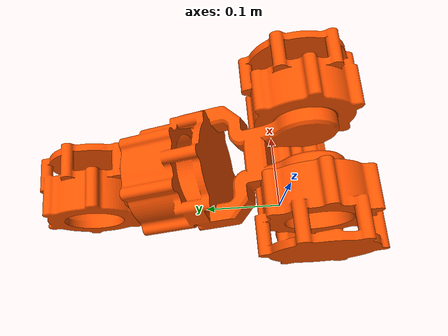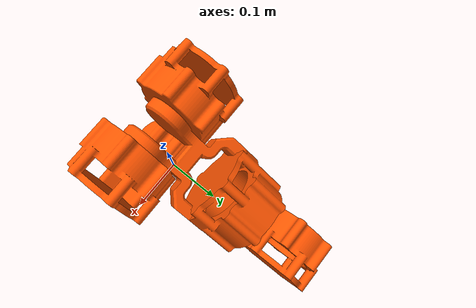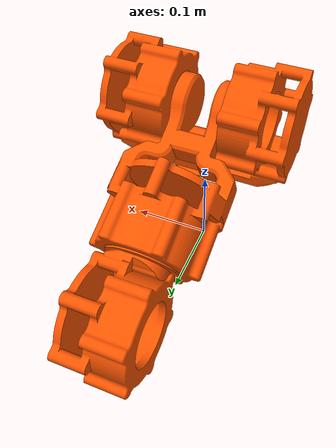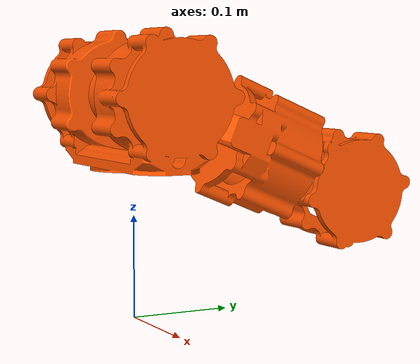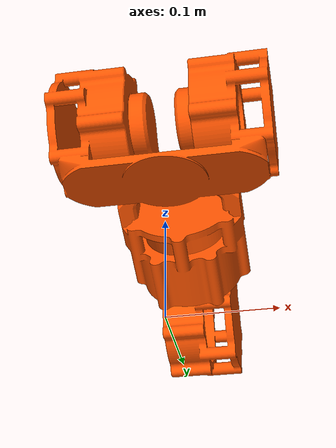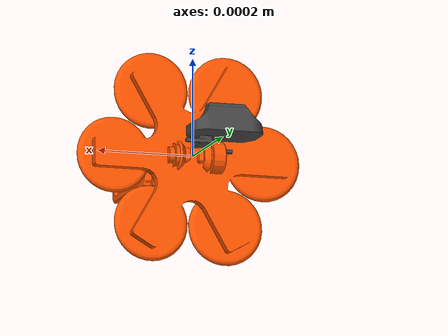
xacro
<?xml version="1.0" ?>
<robot name="darm_ros2" xmlns:xacro="http://www.ros.org/wiki/xacro">

<xacro:include filename="$(find darm_ros2)/urdf/materials.xacro" />
<xacro:include filename="$(find darm_ros2)/urdf/darm.trans" />
<xacro:include filename="$(find darm_ros2)/urdf/gazebo.xacro" />

    <!-- LINKS -->
	<link name="world" />

    <link name="base_link">
        <inertial>
            <origin xyz="-2.288387567127362e-09 0.029744552569164338 -2.7790617352941895e-11" rpy="0.0 0.0 0.0" />
            <mass value="30.98237928008998" />
            <inertia ixx="0.3385363158905134" iyy="0.636909354739284" izz="0.3385363160689544" ixy="2.036397082472488e-09" iyz="2.5408633165300008e-11" ixz="-1.939809256856686e-12" />
        </inertial>
        <visual name="base_link_visual">
            <origin xyz="0.0 0.0 0.0" rpy="0.0 0.0 0.0" />
            <geometry>
                <mesh filename="package://darm_ros2/meshes/base_link.stl" scale="0.001 0.001 0.001" />
            </geometry>
            <material name="orange"/>
        </visual>
        <collision name="base_link_collision">
            <origin xyz="0.0 0.0 0.0" rpy="0.0 0.0 0.0" />
            <geometry>
                <mesh filename="package://darm_ros2/meshes/base_link.stl" scale="0.001 0.001 0.001" />
            </geometry>
        </collision>
    </link>

    <link name="joint_1">
        <inertial>
            <origin xyz="1.0412391355681314e-08 -0.058438410451859345 1.8359150270493027e-08" rpy="0.0 -0.0 0.0" />
            <mass value="7.29719957969873" />
            <inertia ixx="0.01736664062994192" iyy="0.039633627891454026" izz="0.043633339975733765" ixy="3.982327217725157e-09" iyz="-3.838748237483296e-09" ixz="-2.4797155134674376e-09" />
        </inertial>
        <visual name="joint_1_visual">
            <origin xyz="-4.440892098500626e-18 0.14444 -5.813068857654297e-17" rpy="-3.141592653589793 -5.208712097802611e-32 1.5375327027985792e-47" />
            <geometry>
                <mesh filename="package://darm_ros2/meshes/joint_1.stl" scale="0.001 0.001 0.001" />
            </geometry>
            <material name="orange"/>
        </visual>
        <collision name="joint_1_collision">
            <origin xyz="-4.440892098500626e-18 0.14444 -5.813068857654297e-17" rpy="-3.141592653589793 -5.208712097802611e-32 1.5375327027985792e-47" />
            <geometry>
                <mesh filename="package://darm_ros2/meshes/joint_1.stl" scale="0.001 0.001 0.001" />
            </geometry>
        </collision>
    </link>

    <link name="joint_2">
        <inertial>
            <origin xyz="0.101530183690497 1.8692954396343961e-10 0.031000009707170414" rpy="-2.0175996271931116e-126 -0.0 0.0" />
            <mass value="4.705409447021641" />
            <inertia ixx="0.008990488834289139" iyy="0.023924072334989277" izz="0.021967663876200583" ixy="-2.262051336309411e-12" iyz="-3.4212063421550937e-11" ixz="-1.2117789804287076e-10" />
        </inertial>
        <visual name="joint_2_visual">
            <origin xyz="-0.21544000000000002 7.20682744733199e-18 0.030999999999999996" rpy="-1.5707963267948961 -1.5707963267948963 0" />
            <geometry>
                <mesh filename="package://darm_ros2/meshes/joint_2.stl" scale="0.001 0.001 0.001" />
            </geometry>
            <material name="orange"/>
        </visual>
        <collision name="joint_2_collision">
            <origin xyz="-0.21544000000000002 7.20682744733199e-18 0.030999999999999996" rpy="-1.5707963267948961 -1.5707963267948963 0" />
            <geometry>
                <mesh filename="package://darm_ros2/meshes/joint_2.stl" scale="0.001 0.001 0.001" />
            </geometry>
        </collision>
    </link>

    <link name="joint_3">
        <inertial>
            <origin xyz="0.002678897497101074 -0.056368343818636146 2.085648641441812e-09" rpy="0.0 2.5912800646590067e-80 0.0" />
            <mass value="2.2605790149546157" />
            <inertia ixx="0.005582960368891776" iyy="0.003838758447778264" izz="0.004707058146855458" ixy="1.2728021578769632e-05" iyz="-9.431452885407716e-11" ixz="-1.0587058492856476e-10" />
        </inertial>
        <visual name="joint_3_visual">
            <origin xyz="-4.440892098489952e-18 0.40708 1.7965596314673336e-14" rpy="-3.1415926535897487 -5.208712097802611e-32 -2.304339986547433e-45" />
            <geometry>
                <mesh filename="package://darm_ros2/meshes/joint_3.stl" scale="0.001 0.001 0.001" />
            </geometry>
            <material name="orange"/>
        </visual>
        <collision name="joint_3_collision">
            <origin xyz="-4.440892098489952e-18 0.40708 1.7965596314673336e-14" rpy="-3.1415926535897487 -5.208712097802611e-32 -2.304339986547433e-45" />
            <geometry>
                <mesh filename="package://darm_ros2/meshes/joint_3.stl" scale="0.001 0.001 0.001" />
            </geometry>
        </collision>
    </link>

    <link name="forearm">
        <inertial>
            <origin xyz="0.1378122186468962 9.542655754678948e-10 -0.025280304664352254" rpy="2.4088000730165286e-127 -0.0 0.0" />
            <mass value="5.700507286017294" />
            <inertia ixx="0.014690983611441544" iyy="0.05714315758688748" izz="0.04742481748033489" ixy="2.9166207951480496e-11" iyz="4.415442864317638e-10" ixz="0.006835184215065112" />
        </inertial>
        <visual name="forearm_visual">
            <origin xyz="-0.47208 1.0103368337348527e-18 -0.036399999999999995" rpy="1.570796326794897 1.5707963267948961 0" />
            <geometry>
                <mesh filename="package://darm_ros2/meshes/forearm.stl" scale="0.001 0.001 0.001" />
            </geometry>
            <material name="orange"/>
        </visual>
        <collision name="forearm_collision">
            <origin xyz="-0.47208 1.0103368337348527e-18 -0.036399999999999995" rpy="1.570796326794897 1.5707963267948961 0" />
            <geometry>
                <mesh filename="package://darm_ros2/meshes/forearm.stl" scale="0.001 0.001 0.001" />
            </geometry>
        </collision>
    </link>

    <link name="differential">
        <inertial>
            <origin xyz="0.0006425723553488183 9.013664646654307e-14 0.05277588000006361" rpy="-5.800390575776574e-124 -0.0 0.0" />
            <mass value="0.9802336095389897" />
            <inertia ixx="0.0011354294505879889" iyy="0.0011537301057404914" izz="0.0002680624353230687" ixy="2.2392050591685125e-13" iyz="-7.071286713681614e-15" ixz="9.333313530719728e-17" />
        </inertial>
        <visual name="differential_visual">
            <origin xyz="-0.8099010000000003 3.527298460556203e-15 0.05277588" rpy="1.570796326794897 1.5707963267948297 0" />
            <geometry>
                <mesh filename="package://darm_ros2/meshes/differential.stl" scale="0.001 0.001 0.001" />
            </geometry>
            <material name="orange"/>
        </visual>
        <collision name="differential_collision">
            <origin xyz="-0.8099010000000003 3.527298460556203e-15 0.05277588" rpy="1.570796326794897 1.5707963267948297 0" />
            <geometry>
                <mesh filename="package://darm_ros2/meshes/differential.stl" scale="0.001 0.001 0.001" />
            </geometry>
        </collision>
    </link>

    <link name="gripper">
        <inertial>
            <origin xyz="-7.247865885054152e-10 0.04702630625922907 5.78616520084559e-10" rpy="0.0 -3.5826229164382036e-80 0.0" />
            <mass value="1.788490804033633" />
            <inertia ixx="0.0014720116879258782" iyy="0.0014220967307062562" izz="0.00178230536921542" ixy="3.3014607067102986e-11" iyz="-2.532468461996125e-11" ixz="-1.9905818682277557e-12" />
        </inertial>
        <visual name="gripper_visual">
            <origin xyz="-4.440892094647803e-18 -0.831601 -5.401531106258501e-14" rpy="6.536973199318745e-14 5.208712097802611e-32 3.3888229575898595e-45" />
            <geometry>
                <mesh filename="package://darm_ros2/meshes/gripper.stl" scale="0.001 0.001 0.001" />
            </geometry>
            <material name="orange"/>
        </visual>
        <collision name="gripper_collision">
            <origin xyz="-4.440892094647803e-18 -0.831601 -5.401531106258501e-14" rpy="6.536973199318745e-14 5.208712097802611e-32 3.3888229575898595e-45" />
            <geometry>
                <mesh filename="package://darm_ros2/meshes/gripper.stl" scale="0.001 0.001 0.001" />
            </geometry>
        </collision>
    </link>

    <link name="finger_1">
        <inertial>
            <origin xyz="0.022275330159025372 -0.004364373907004334 -0.014714950169034154" rpy="0.0 -0.0 0.0" />
            <mass value="0.26185795930929495" />
            <inertia ixx="3.880934440505236e-05" iyy="9.298201797455129e-05" izz="8.507761782892623e-05" ixy="-6.002284546489584e-06" iyz="-2.8994273520819304e-06" ixz="-1.446096623260382e-06" />
        </inertial>
        <visual name="finger_1_visual">
            <origin xyz="-0.9165647460883233 -0.003503477953506661 -0.02500002288399092" rpy="-1.5707925322419267 -1.570796301827784 0" />
            <geometry>
                <mesh filename="package://darm_ros2/meshes/finger_1.stl" scale="0.001 0.001 0.001" />
            </geometry>
            <material name="rubber"/>
        </visual>
        <collision name="finger_1_collision">
            <origin xyz="-0.9165647460883233 -0.003503477953506661 -0.02500002288399092" rpy="-1.5707925322419267 -1.570796301827784 0" />
            <geometry>
                <mesh filename="package://darm_ros2/meshes/finger_1.stl" scale="0.001 0.001 0.001" />
            </geometry>
        </collision>
    </link>

    <link name="finger_2">
        <inertial>
            <origin xyz="0.02227529630190503 -0.004364542956608771 -0.014714951286228788" rpy="0.0 -0.0 8.470329472543003e-22" />
            <mass value="0.2618579593092649" />
            <inertia ixx="3.880925315979235e-05" iyy="9.298210907506991e-05" izz="8.507761797295812e-05" ixy="-6.001873568420766e-06" iyz="-2.8994160777154916e-06" ixz="-1.4461163168688797e-06" />
        </inertial>
        <visual name="finger_2_visual">
            <origin xyz="-0.9165647738985482 -0.0034965220464385043 -0.024999977120956935" rpy="1.5708001213478664 1.5707963018277513 0" />
            <geometry>
                <mesh filename="package://darm_ros2/meshes/finger_2.stl" scale="0.001 0.001 0.001" />
            </geometry>
            <material name="rubber"/>
        </visual>
        <collision name="finger_2_collision">
            <origin xyz="-0.9165647738985482 -0.0034965220464385043 -0.024999977120956935" rpy="1.5708001213478664 1.5707963018277513 0" />
            <geometry>
                <mesh filename="package://darm_ros2/meshes/finger_2.stl" scale="0.001 0.001 0.001" />
            </geometry>
        </collision>
    </link>

    <link name="dock">
        <inertial>
            <origin xyz="9.123968339512894e-08 0.02244543692492791 -0.21216314201498515" rpy="0.0 0.0 0.0" />
            <mass value="4.14283366579888" />
            <inertia ixx="0.003902882548391967" iyy="0.00782818367286213" izz="0.006179527994280975" ixy="-2.754251235646076e-09" iyz="0.00017015521062901904" ixz="6.810558796533437e-09" />
        </inertial>
        <visual name="dock_visual">
            <origin xyz="0.0 0.0 0.0" rpy="0.0 0.0 0.0" />
            <geometry>
                <mesh filename="package://darm_ros2/meshes/dock.stl" scale="0.001 0.001 0.001" />
            </geometry>
            <material name="rubber"/>
        </visual>
        <collision name="dock_collision">
            <origin xyz="0.0 0.0 0.0" rpy="0.0 0.0 0.0" />
            <geometry>
                <mesh filename="package://darm_ros2/meshes/dock.stl" scale="0.001 0.001 0.001" />
            </geometry>
        </collision>
    </link>

    <!-- JOINTS -->
    <joint name="base_joint" type="fixed">
        <origin xyz="0 0 0" rpy="${90 * pi / 180} 0 0"/>
        <parent link="world"/>
        <child link="base_link"/>
    </joint>

    <joint name="joint_1_joint" type="revolute">
        <origin xyz="4.4408920985006124e-18 0.14443999999999987 -6.013519624750362e-17" rpy="3.141592653589793 -5.208712097802607e-32 1.609818104043878e-47" />
        <parent link="base_link" />
        <child link="joint_1" />
        <axis xyz="-2.3262389236353407e-63 -1.0 4.02455846426619e-16" />
        <limit lower="${-pi}" upper="${pi}" effort="20" velocity="2" />
    </joint>

    <joint name="joint_2_joint" type="revolute">
        <origin xyz="-0.031000000000000003 -0.071 2.857436509628995e-17" rpy="-1.5707963267948963 -4.02455846426619e-16 -1.5707963267948966" />
        <parent link="joint_1" />
        <child link="joint_2" />
        <axis xyz="-3.730750440443123e-48 2.324793976983833e-16 1.0" />
        <limit lower="${-113 * pi / 180}" upper="${113 * pi / 180}" effort="40" velocity="2" />
    </joint>

    <joint name="joint_3_joint" type="revolute">
        <origin xyz="0.19163999999999998 7.206861328649881e-18 0.031000000000000003" rpy="1.5707963267948526 -1.5707963267948963 0" />
        <parent link="joint_2" />
        <child link="joint_3" />
        <axis xyz="-2.3262389236353413e-63 -1.0 -4.413283944382435e-14" />
        <limit lower="${-pi}" upper="${pi}" effort="20" velocity="2" />
    </joint>

    <joint name="forearm_joint" type="revolute">
        <origin xyz="-0.0364 -0.065 -2.8686345638485836e-15" rpy="1.5707963267948966 4.413283944382435e-14 -1.5707963267948966" />
        <parent link="joint_3" />
        <child link="forearm" />
        <axis xyz="3.730750440443123e-48 -2.775557561585062e-17 1.0" />
        <limit lower="${-122.9 * pi / 180}" upper="${122.9 * pi / 180}" effort="20" velocity="2" />
    </joint>

    <joint name="differential_joint" type="revolute">
        <origin xyz="0.337821 2.475127880450021e-18 -0.08917588" rpy="6.686318165803997e-14 -0.0 0.0" />
        <parent link="forearm" />
        <child link="differential" />
        <axis xyz="3.730750440443123e-48 6.683542608242411e-14 1.0" />
        <limit lower="${-110 * pi / 180}" upper="${110 * pi / 180}" effort="8" velocity="2" />
    </joint>

    <joint name="gripper_joint" type="revolute">
        <origin xyz="0.021699999999999733 3.527298426674885e-15 0.05277588" rpy="1.5707963267948317 1.5707963267948297 0" />
        <parent link="differential" />
        <child link="gripper" />
        <axis xyz="2.3262389236353413e-63 -1.0 -6.495339835895301e-14" />
        <limit lower="-3.141593" upper="3.141593" effort="8" velocity="2" />
    </joint>

    <joint name="finger_1_joint" type="prismatic">
        <origin xyz="0.02499999999999975 0.0849637599999997 0.0035000000000055187" rpy="1.5707963267949931 3.870443954063792e-06 1.5707963517620094" />
        <parent link="gripper" />
        <child link="finger_1" />
        <axis xyz="-2.4967112710792502e-08 -1.4439660728622791e-53 0.9999999999999998" />
        <limit lower="-0.001" upper="0.025" effort="2" velocity="0.5" />
    </joint>

    <joint name="finger_2_joint" type="prismatic">
        <origin xyz="-0.024999999999999738 0.08496376000000026 -0.003699999999994481" rpy="-1.5707963267948 3.870438894076094e-06 1.570796351762042" />
        <parent link="gripper" />
        <child link="finger_2" />
        <axis xyz="2.49671453513494e-08 1.262177448353619e-29 0.9999999999999997" />
        <limit lower="-0.001" upper="0.025" effort="2" velocity="0.5" />
    </joint>

    <joint name="dock_joint" type="fixed">
		<origin xyz="0 0 0" rpy="0 0 0"/>
		<parent link="base_link"/>
		<child link="dock"/>
	</joint>

</robot>

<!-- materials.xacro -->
<robot name="darm_ros2" xmlns:xacro="http://www.ros.org/wiki/xacro" >

<material name="orange">
  <color rgba="1.0 0.329 0.0 1.0"/>
</material>

<material name="rubber">
  <color rgba="0.2667 0.2627 0.2627 1.0"/>
</material>

</robot>
